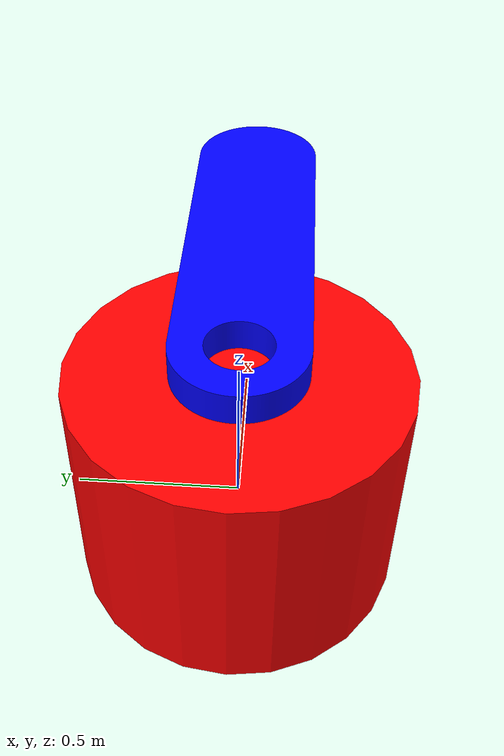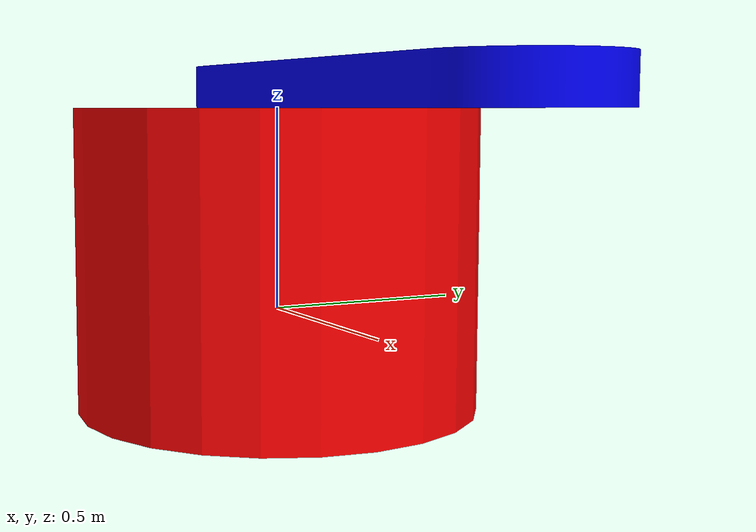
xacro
<?xml version="1.0"?>

<!-- A XACRO file to build the entire articulated manipulators by simply adding
    single lines -->

<robot xmlns:xacro="http://www.ros.org/wiki/xacro" name="robot1">
    <!-- XACRO properties for the meshes -->
    <xacro:property name="link1_mesh" value="package://robot_viz/urdf/meshes/link1_body.stl" />
    <link name="base_link">
        <visual>
            <origin xyz="0.0 0.0 0.125" rpy="0.0 0.0 0.0"/>
            <geometry>
                <cylinder radius="0.5" length="0.75"/>
            </geometry>
            <material name="base_material">
                <color rgba="1.0 0.0 0.0 1.0"/>
            </material>
        </visual>
    </link>
    <link name="link1">
        <visual>
            <origin xyz="0.0 0.0 0.0" rpy="0.0 0.0 0.0"/>
            <geometry>
                <mesh filename="${link1_mesh}" scale="0.001 0.001 0.001" />
            </geometry>
            <material name="link1_material">
                <color rgba="0.0 0.0 1.0 1.0"/>
            </material>
        </visual>
    </link>
    <joint name="joint1" type="revolute">
        <origin xyz="0.0 0.0 0.5" rpy="0.0 0.0 0.0"/>
        <limit lower="0.0" upper="3.1415926" effort="10.0" velocity="6.283"/>
        <axis xyz="0.0 0.0 1.0"/>
        <parent link="base_link"/>
        <child link="link1"/>
    </joint>
</robot>
